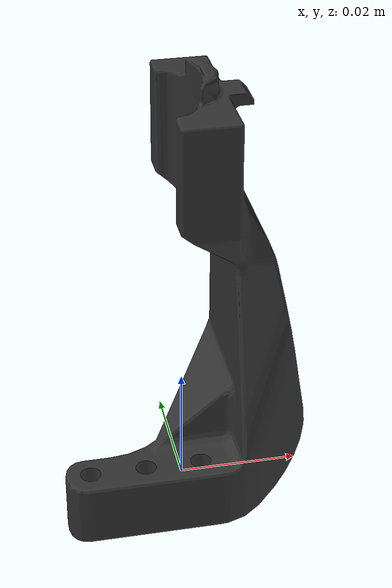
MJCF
<mujoco model="finger_v6">
  <default>
    <default class="visual">
      <geom group="2" type="mesh" contype="0" conaffinity="0"/>
    </default>
    <default class="collision">
      <geom group="3" type="mesh"/>
    </default>
  </default>
  <asset>
    <material name="mtl_finger_v6" specular="0.20000000000000004" shininess="1.0" rgba="0.20000000 0.20000000 0.20000000 1.0"/>
    <mesh file="finger_v6.obj"/>
    <mesh file="finger_v6_collision_0.obj"/>
    <mesh file="finger_v6_collision_1.obj"/>
    <mesh file="finger_v6_collision_2.obj"/>
    <mesh file="finger_v6_collision_3.obj"/>
    <mesh file="finger_v6_collision_4.obj"/>
    <mesh file="finger_v6_collision_5.obj"/>
    <mesh file="finger_v6_collision_6.obj"/>
    <mesh file="finger_v6_collision_7.obj"/>
    <mesh file="finger_v6_collision_8.obj"/>
    <mesh file="finger_v6_collision_9.obj"/>
    <mesh file="finger_v6_collision_10.obj"/>
    <mesh file="finger_v6_collision_11.obj"/>
    <mesh file="finger_v6_collision_12.obj"/>
    <mesh file="finger_v6_collision_13.obj"/>
    <mesh file="finger_v6_collision_14.obj"/>
    <mesh file="finger_v6_collision_15.obj"/>
    <mesh file="finger_v6_collision_16.obj"/>
    <mesh file="finger_v6_collision_17.obj"/>
    <mesh file="finger_v6_collision_18.obj"/>
    <mesh file="finger_v6_collision_19.obj"/>
    <mesh file="finger_v6_collision_20.obj"/>
    <mesh file="finger_v6_collision_21.obj"/>
  </asset>
  <worldbody>
    <body name="finger_v6">
      <geom material="mtl_finger_v6" mesh="finger_v6" class="visual"/>
      <geom mesh="finger_v6_collision_0" rgba="0.29761008470827877 0.6176999552384602 0.9267292046225429 1" class="collision"/>
      <geom mesh="finger_v6_collision_1" rgba="0.3021121628901462 0.6818128062207025 0.2610551866145201 1" class="collision"/>
      <geom mesh="finger_v6_collision_2" rgba="0.4764954240148157 0.6299711835048258 0.1585385552035965 1" class="collision"/>
      <geom mesh="finger_v6_collision_3" rgba="0.3071084903327307 0.25224067273638184 0.48958303094843325 1" class="collision"/>
      <geom mesh="finger_v6_collision_4" rgba="0.6786661935641584 0.404876168425212 0.9119278752293373 1" class="collision"/>
      <geom mesh="finger_v6_collision_5" rgba="0.3670616467895389 0.3320748399340706 0.25156498827870744 1" class="collision"/>
      <geom mesh="finger_v6_collision_6" rgba="0.047247887794389265 0.4069803106969876 0.6225608790386323 1" class="collision"/>
      <geom mesh="finger_v6_collision_7" rgba="0.7558599028150801 0.2784395760443288 0.45461317094609877 1" class="collision"/>
      <geom mesh="finger_v6_collision_8" rgba="0.1527610707211886 0.915224183765467 0.38326829603021073 1" class="collision"/>
      <geom mesh="finger_v6_collision_9" rgba="0.29330165318751944 0.4009953136045895 0.2974133635881371 1" class="collision"/>
      <geom mesh="finger_v6_collision_10" rgba="0.6924278201981559 0.7895114411171005 0.45473937948240506 1" class="collision"/>
      <geom mesh="finger_v6_collision_11" rgba="0.673690370610597 0.7161652177711618 0.8173770207924747 1" class="collision"/>
      <geom mesh="finger_v6_collision_12" rgba="0.6299925639245165 0.6721054054764732 0.07155911387444602 1" class="collision"/>
      <geom mesh="finger_v6_collision_13" rgba="0.4708174519806436 0.006324551543081314 0.9304249613742848 1" class="collision"/>
      <geom mesh="finger_v6_collision_14" rgba="0.6070393257330403 0.6656744907450054 0.5598123124988528 1" class="collision"/>
      <geom mesh="finger_v6_collision_15" rgba="0.6395646834887441 0.07239361044936643 0.494356239763278 1" class="collision"/>
      <geom mesh="finger_v6_collision_16" rgba="0.005672364066523938 0.041552631327278045 0.08989546350605682 1" class="collision"/>
      <geom mesh="finger_v6_collision_17" rgba="0.695104327265687 0.99249103234114 0.47887708167851306 1" class="collision"/>
      <geom mesh="finger_v6_collision_18" rgba="0.3972786924741186 0.9590035351011776 0.031838556929961404 1" class="collision"/>
      <geom mesh="finger_v6_collision_19" rgba="0.27219111321619327 0.8692657464702958 0.34006314587730635 1" class="collision"/>
      <geom mesh="finger_v6_collision_20" rgba="0.9027737605265916 0.7265038542047646 0.16066385529177218 1" class="collision"/>
      <geom mesh="finger_v6_collision_21" rgba="0.1748068478573328 0.8952354683008019 0.08894101206310079 1" class="collision"/>
    </body>
  </worldbody>
</mujoco>
